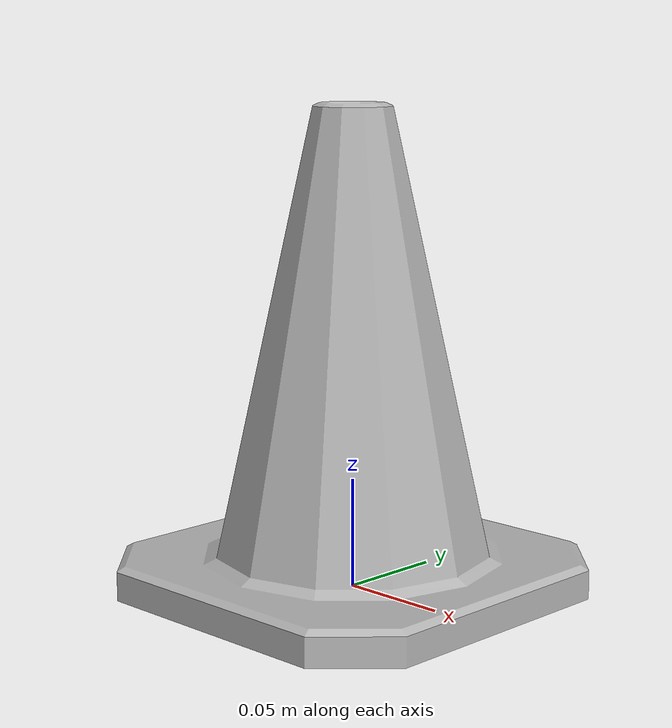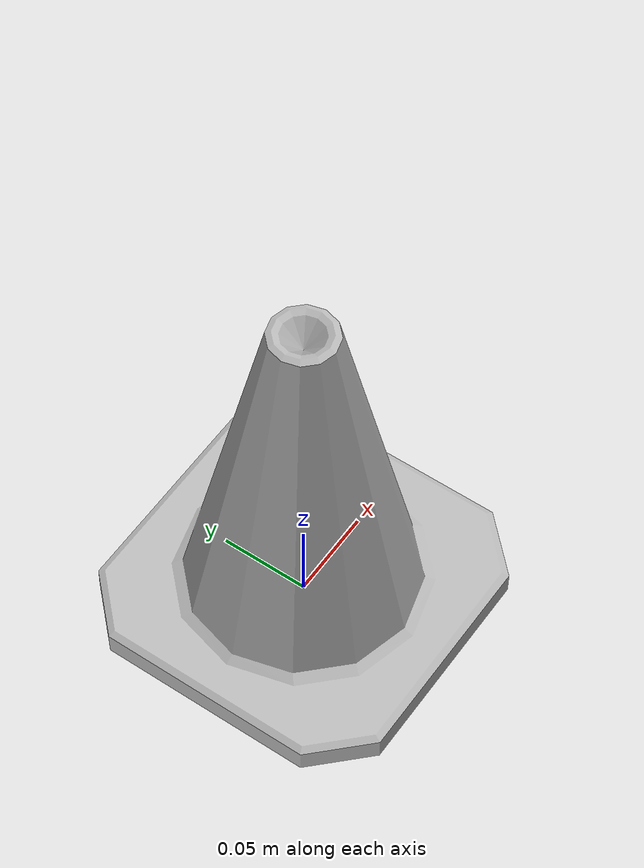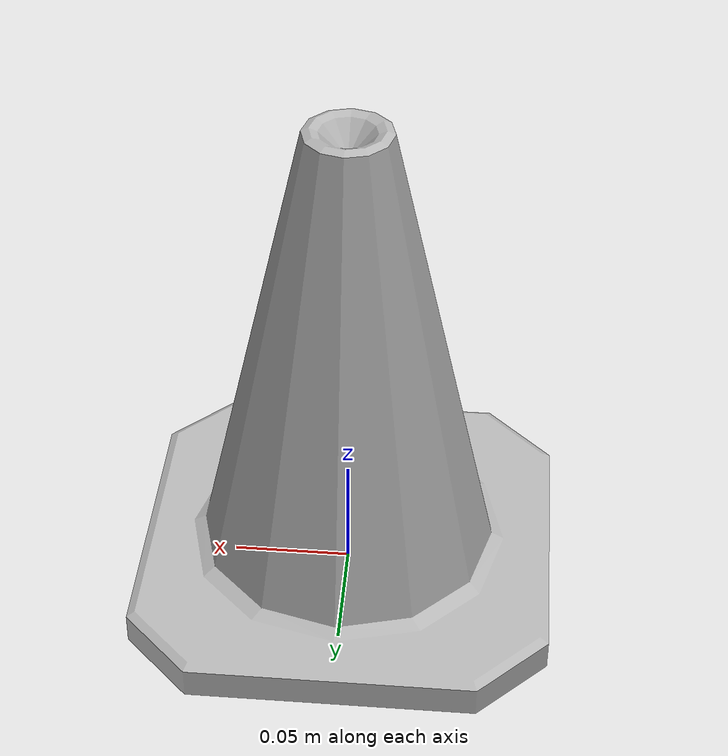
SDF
<?xml version="1.0"?>
<sdf version="1.3">
  <model name="Construction Cone">
    <static>false</static>
    <link name="link">
      <collision name="collision">
        <geometry>
          <mesh>
            <scale>3.5 3.5 2</scale>
            <uri>model://construction_cone/meshes/construction_cone.dae</uri>
          </mesh>
        </geometry>
      </collision>
      <visual name="visual">
        <geometry>
          <mesh>
            <scale>3.5 3.5 2</scale>
            <uri>model://construction_cone/meshes/construction_cone.dae</uri>
          </mesh>
        </geometry>
      </visual>
    </link>
  </model>
</sdf>
